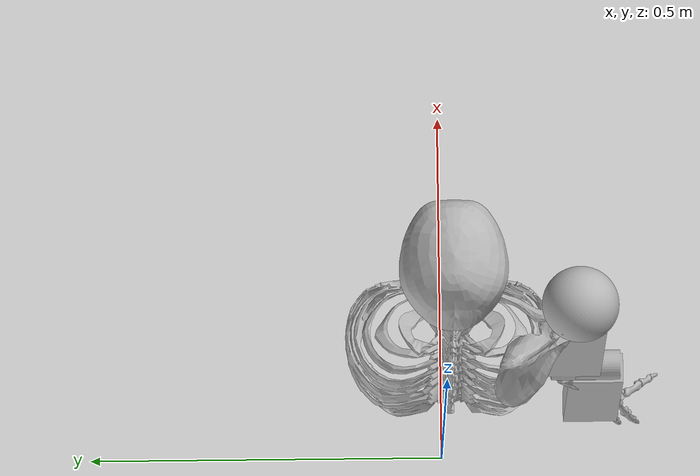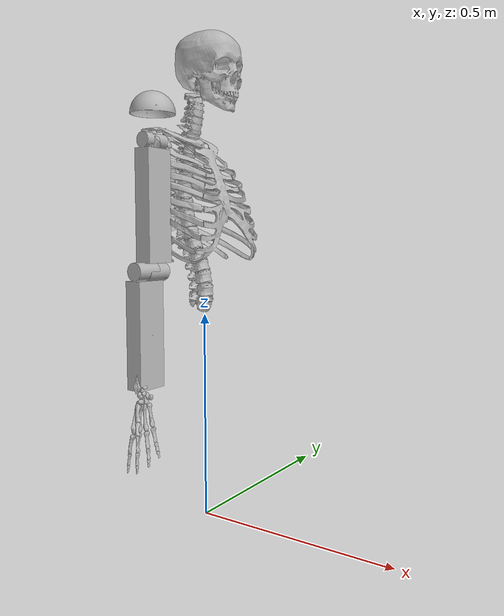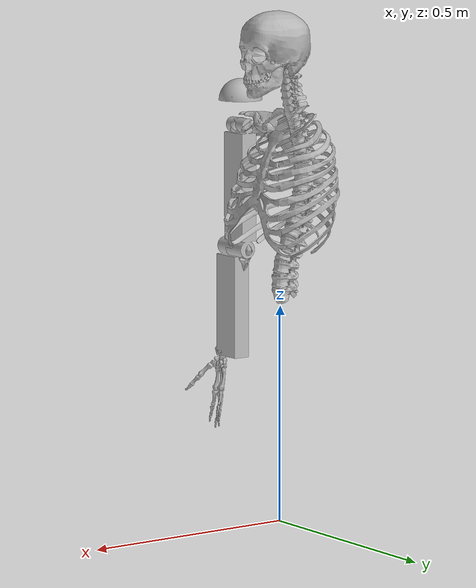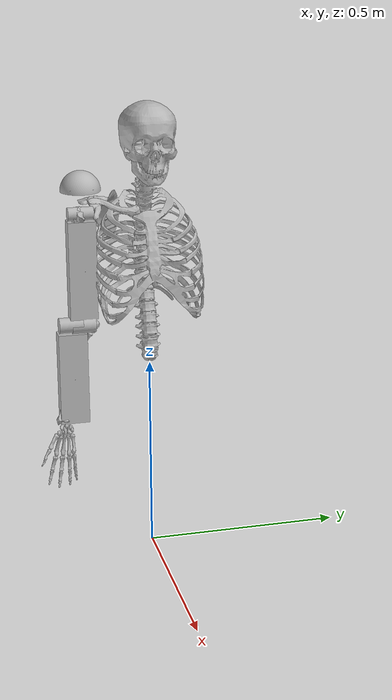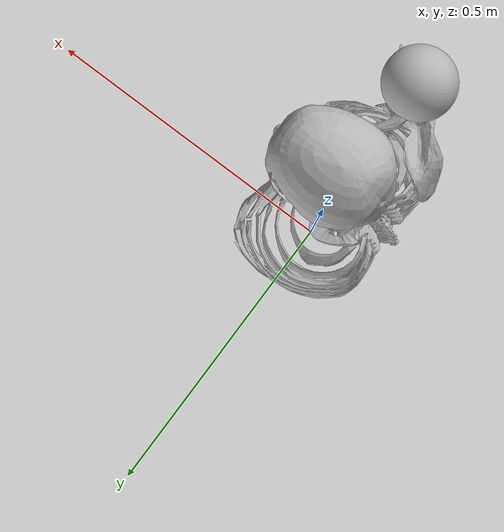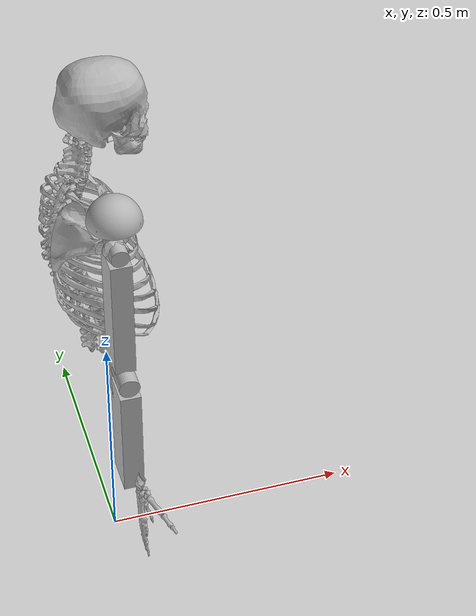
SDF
<?xml version='1.0'?>
<sdf version='1.6'>
  <model name='ExoWtihSkeletonNoJoints'>
    <model name='ExoSuitNoJoints'>
      <link name='upperArm'>
        <self_collide>0</self_collide>
        <pose frame=''>-0 -0.165701 0.853429 0 -0 0</pose>
        <inertial>
          <pose frame=''>0 0 0 0 -0 0</pose>
          <mass>0.035365</mass>
          <inertia>
            <ixx>0.0268487</ixx>
            <ixy>-1.31877e-10</ixy>
            <ixz>5.0011e-05</ixz>
            <iyy>0.0258777</iyy>
            <iyz>6.78369e-10</iyz>
            <izz>0.000996808</izz>
          </inertia>
        </inertial>
        <visual name='upperArm_visual'>
          <geometry>
            <mesh>
              <uri>model://ExoSuitNoJoints/meshes/CAD/upperArm.stl</uri>
              <scale>0.001 0.001 0.001</scale>
            </mesh>
          </geometry>
        </visual>
      </link>
      <link name='lowerArm'>
        <self_collide>0</self_collide>
        <pose frame=''>-1e-06 -0.196437 0.58865 0 -0 0</pose>
        <inertial>
          <pose frame=''>0 0 0 0 -0 0</pose>
          <mass>0.0390282</mass>
          <inertia>
            <ixx>0.0151468</ixx>
            <ixy>-4.3037e-09</ixy>
            <ixz>4.49526e-05</ixz>
            <iyy>0.013636</iyy>
            <iyz>1.19603e-08</iyz>
            <izz>0.0015572</izz>
          </inertia>
        </inertial>
        <visual name='lowerArm_visual'>
          <geometry>
            <mesh>
              <uri>model://ExoSuitNoJoints/meshes/CAD/lowerArm.stl</uri>
              <scale>0.001 0.001 0.001</scale>
            </mesh>
          </geometry>
        </visual>
      </link>
      <link name='shoulder'>
        <self_collide>0</self_collide>
        <pose frame=''>-1e-06 -0.163976 1.08128 0 -0 0</pose>
        <inertial>
          <pose frame=''>0 0 0 0 -0 0</pose>
          <mass>0.0163027</mass>
          <inertia>
            <ixx>0.0195156</ixx>
            <ixy>-1.99665e-09</ixy>
            <ixz>2.89054e-05</ixz>
            <iyy>0.0190772</iyy>
            <iyz>1.37222e-08</iyz>
            <izz>0.000464974</izz>
          </inertia>
        </inertial>
        <visual name='shoulder_visual'>
          <geometry>
            <mesh>
              <uri>model://ExoSuitNoJoints/meshes/CAD/shoulder.stl</uri>
              <scale>0.001 0.001 0.001</scale>
            </mesh>
          </geometry>
        </visual>
      </link>
      <joint name='offset' type='fixed'>
        <parent>world</parent>
        <child>shoulder</child>
      </joint>
      <plugin name='muscle_interface_plugin' filename='libgazebo_ros_muscle_interface.so'/>
      <muscles>model://ExoSuitNoJoints/muscles.osim</muscles>
      <pose frame=''>-0.007648 -0.001248 -0.100006 0 -0 0</pose>
    </model>
    <model name='arm26'>
      <muscles>model://arm26/muscles.osim</muscles>
      <link name='base'>
        <pose frame=''>0 0 0.8 1.5708 -0 0</pose>
        <inertial>
          <mass>0.0001</mass>
          <pose frame=''>0 0 0 0 -0 0</pose>
          <inertia>
            <ixx>0</ixx>
            <ixy>0</ixy>
            <ixz>0</ixz>
            <iyy>0</iyy>
            <iyz>0</iyz>
            <izz>0</izz>
          </inertia>
        </inertial>
        <visual name='ground_ribs'>
          <pose frame=''>-0 0 -0 0 -0 0</pose>
          <geometry>
            <mesh>
              <uri>model://arm26/meshes/visuals/ground_ribs.dae</uri>
              <scale>1 1 1</scale>
            </mesh>
          </geometry>
        </visual>
        <visual name='ground_spine'>
          <pose frame=''>-0 0 -0 0 -0 0</pose>
          <geometry>
            <mesh>
              <uri>model://arm26/meshes/visuals/ground_spine.dae</uri>
              <scale>1 1 1</scale>
            </mesh>
          </geometry>
        </visual>
        <visual name='ground_skull'>
          <pose frame=''>-0 0 -0 0 -0 0</pose>
          <geometry>
            <mesh>
              <uri>model://arm26/meshes/visuals/ground_skull.dae</uri>
              <scale>1 1 1</scale>
            </mesh>
          </geometry>
        </visual>
        <visual name='ground_jaw'>
          <pose frame=''>-0 0 -0 0 -0 0</pose>
          <geometry>
            <mesh>
              <uri>model://arm26/meshes/visuals/ground_jaw.dae</uri>
              <scale>1 1 1</scale>
            </mesh>
          </geometry>
        </visual>
        <visual name='ground_r_clavicle'>
          <pose frame=''>-0 0 -0 0 -0 0</pose>
          <geometry>
            <mesh>
              <uri>model://arm26/meshes/visuals/ground_r_clavicle.dae</uri>
              <scale>1 1 1</scale>
            </mesh>
          </geometry>
        </visual>
        <visual name='ground_r_scapula'>
          <pose frame=''>-0 0 -0 0 -0 0</pose>
          <geometry>
            <mesh>
              <uri>model://arm26/meshes/visuals/ground_r_scapula.dae</uri>
              <scale>1 1 1</scale>
            </mesh>
          </geometry>
        </visual>
        <self_collide>0</self_collide>
      </link>
      <link name='r_humerus'>
        <pose frame=''>-0.017545 -0.17 0.793 1.5708 -0 0</pose>
        <inertial>
          <mass>1.86457</mass>
          <pose frame=''>0 0 0 0 -0 0</pose>
          <inertia>
            <ixx>0.01481</ixx>
            <ixy>0</ixy>
            <ixz>0</ixz>
            <iyy>0.004551</iyy>
            <iyz>0</iyz>
            <izz>0.013193</izz>
          </inertia>
        </inertial>
        <visual name='arm_r_humerus'>
          <pose frame=''>-0 0 -0 0 -0 0</pose>
          <geometry>
            <mesh>
              <uri>model://arm26/meshes/visuals/arm_r_humerus.dae</uri>
              <scale>1 1 1</scale>
            </mesh>
          </geometry>
        </visual>
        <self_collide>0</self_collide>
      </link>
      <link name='r_ulna_radius_hand'>
        <pose frame=''>-0.011445 -0.1577 0.5026 1.5708 -0 0</pose>
        <inertial>
          <mass>1.53432</mass>
          <pose frame=''>0 0 0 0 -0 0</pose>
          <inertia>
            <ixx>0.019281</ixx>
            <ixy>0</ixy>
            <ixz>0</ixz>
            <iyy>0.001571</iyy>
            <iyz>0</iyz>
            <izz>0.020062</izz>
          </inertia>
        </inertial>
        <visual name='arm_r_ulna'>
          <pose frame=''>-0 0 -0 0 -0 0</pose>
          <geometry>
            <mesh>
              <uri>model://arm26/meshes/visuals/arm_r_ulna.dae</uri>
              <scale>1 1 1</scale>
            </mesh>
          </geometry>
        </visual>
        <visual name='arm_r_radius'>
          <pose frame=''>-0 0 -0 0 -0 0</pose>
          <geometry>
            <mesh>
              <uri>model://arm26/meshes/visuals/arm_r_radius.dae</uri>
              <scale>1 1 1</scale>
            </mesh>
          </geometry>
        </visual>
        <visual name='arm_r_lunate'>
          <pose frame=''>-0 0 -0 0 -0 0</pose>
          <geometry>
            <mesh>
              <uri>model://arm26/meshes/visuals/arm_r_lunate.dae</uri>
              <scale>1 1 1</scale>
            </mesh>
          </geometry>
        </visual>
        <visual name='arm_r_scaphoid'>
          <pose frame=''>-0 0 -0 0 -0 0</pose>
          <geometry>
            <mesh>
              <uri>model://arm26/meshes/visuals/arm_r_scaphoid.dae</uri>
              <scale>1 1 1</scale>
            </mesh>
          </geometry>
        </visual>
        <visual name='arm_r_pisiform'>
          <pose frame=''>-0 0 -0 0 -0 0</pose>
          <geometry>
            <mesh>
              <uri>model://arm26/meshes/visuals/arm_r_pisiform.dae</uri>
              <scale>1 1 1</scale>
            </mesh>
          </geometry>
        </visual>
        <visual name='arm_r_triquetrum'>
          <pose frame=''>-0 0 -0 0 -0 0</pose>
          <geometry>
            <mesh>
              <uri>model://arm26/meshes/visuals/arm_r_triquetrum.dae</uri>
              <scale>1 1 1</scale>
            </mesh>
          </geometry>
        </visual>
        <visual name='arm_r_capitate'>
          <pose frame=''>-0 0 -0 0 -0 0</pose>
          <geometry>
            <mesh>
              <uri>model://arm26/meshes/visuals/arm_r_capitate.dae</uri>
              <scale>1 1 1</scale>
            </mesh>
          </geometry>
        </visual>
        <visual name='arm_r_trapezium'>
          <pose frame=''>-0 0 -0 0 -0 0</pose>
          <geometry>
            <mesh>
              <uri>model://arm26/meshes/visuals/arm_r_trapezium.dae</uri>
              <scale>1 1 1</scale>
            </mesh>
          </geometry>
        </visual>
        <visual name='arm_r_trapezoid'>
          <pose frame=''>-0 0 -0 0 -0 0</pose>
          <geometry>
            <mesh>
              <uri>model://arm26/meshes/visuals/arm_r_trapezoid.dae</uri>
              <scale>1 1 1</scale>
            </mesh>
          </geometry>
        </visual>
        <visual name='arm_r_hamate'>
          <pose frame=''>-0 0 -0 0 -0 0</pose>
          <geometry>
            <mesh>
              <uri>model://arm26/meshes/visuals/arm_r_hamate.dae</uri>
              <scale>1 1 1</scale>
            </mesh>
          </geometry>
        </visual>
        <visual name='arm_r_1mc'>
          <pose frame=''>-0 0 -0 0 -0 0</pose>
          <geometry>
            <mesh>
              <uri>model://arm26/meshes/visuals/arm_r_1mc.dae</uri>
              <scale>1 1 1</scale>
            </mesh>
          </geometry>
        </visual>
        <visual name='arm_r_2mc'>
          <pose frame=''>-0 0 -0 0 -0 0</pose>
          <geometry>
            <mesh>
              <uri>model://arm26/meshes/visuals/arm_r_2mc.dae</uri>
              <scale>1 1 1</scale>
            </mesh>
          </geometry>
        </visual>
        <visual name='arm_r_3mc'>
          <pose frame=''>-0 0 -0 0 -0 0</pose>
          <geometry>
            <mesh>
              <uri>model://arm26/meshes/visuals/arm_r_3mc.dae</uri>
              <scale>1 1 1</scale>
            </mesh>
          </geometry>
        </visual>
        <visual name='arm_r_4mc'>
          <pose frame=''>-0 0 -0 0 -0 0</pose>
          <geometry>
            <mesh>
              <uri>model://arm26/meshes/visuals/arm_r_4mc.dae</uri>
              <scale>1 1 1</scale>
            </mesh>
          </geometry>
        </visual>
        <visual name='arm_r_5mc'>
          <pose frame=''>-0 0 -0 0 -0 0</pose>
          <geometry>
            <mesh>
              <uri>model://arm26/meshes/visuals/arm_r_5mc.dae</uri>
              <scale>1 1 1</scale>
            </mesh>
          </geometry>
        </visual>
        <visual name='arm_r_thumbprox'>
          <pose frame=''>-0 0 -0 0 -0 0</pose>
          <geometry>
            <mesh>
              <uri>model://arm26/meshes/visuals/arm_r_thumbprox.dae</uri>
              <scale>1 1 1</scale>
            </mesh>
          </geometry>
        </visual>
        <visual name='arm_r_thumbdist'>
          <pose frame=''>-0 0 -0 0 -0 0</pose>
          <geometry>
            <mesh>
              <uri>model://arm26/meshes/visuals/arm_r_thumbdist.dae</uri>
              <scale>1 1 1</scale>
            </mesh>
          </geometry>
        </visual>
        <visual name='arm_r_2proxph'>
          <pose frame=''>-0 0 -0 0 -0 0</pose>
          <geometry>
            <mesh>
              <uri>model://arm26/meshes/visuals/arm_r_2proxph.dae</uri>
              <scale>1 1 1</scale>
            </mesh>
          </geometry>
        </visual>
        <visual name='arm_r_2midph'>
          <pose frame=''>-0 0 -0 0 -0 0</pose>
          <geometry>
            <mesh>
              <uri>model://arm26/meshes/visuals/arm_r_2midph.dae</uri>
              <scale>1 1 1</scale>
            </mesh>
          </geometry>
        </visual>
        <visual name='arm_r_2distph'>
          <pose frame=''>-0 0 -0 0 -0 0</pose>
          <geometry>
            <mesh>
              <uri>model://arm26/meshes/visuals/arm_r_2distph.dae</uri>
              <scale>1 1 1</scale>
            </mesh>
          </geometry>
        </visual>
        <visual name='arm_r_3proxph'>
          <pose frame=''>-0 0 -0 0 -0 0</pose>
          <geometry>
            <mesh>
              <uri>model://arm26/meshes/visuals/arm_r_3proxph.dae</uri>
              <scale>1 1 1</scale>
            </mesh>
          </geometry>
        </visual>
        <visual name='arm_r_3midph'>
          <pose frame=''>-0 0 -0 0 -0 0</pose>
          <geometry>
            <mesh>
              <uri>model://arm26/meshes/visuals/arm_r_3midph.dae</uri>
              <scale>1 1 1</scale>
            </mesh>
          </geometry>
        </visual>
        <visual name='arm_r_3distph'>
          <pose frame=''>-0 0 -0 0 -0 0</pose>
          <geometry>
            <mesh>
              <uri>model://arm26/meshes/visuals/arm_r_3distph.dae</uri>
              <scale>1 1 1</scale>
            </mesh>
          </geometry>
        </visual>
        <visual name='arm_r_4proxph'>
          <pose frame=''>-0 0 -0 0 -0 0</pose>
          <geometry>
            <mesh>
              <uri>model://arm26/meshes/visuals/arm_r_4proxph.dae</uri>
              <scale>1 1 1</scale>
            </mesh>
          </geometry>
        </visual>
        <visual name='arm_r_4midph'>
          <pose frame=''>-0 0 -0 0 -0 0</pose>
          <geometry>
            <mesh>
              <uri>model://arm26/meshes/visuals/arm_r_4midph.dae</uri>
              <scale>1 1 1</scale>
            </mesh>
          </geometry>
        </visual>
        <visual name='arm_r_4distph'>
          <pose frame=''>-0 0 -0 0 -0 0</pose>
          <geometry>
            <mesh>
              <uri>model://arm26/meshes/visuals/arm_r_4distph.dae</uri>
              <scale>1 1 1</scale>
            </mesh>
          </geometry>
        </visual>
        <visual name='arm_r_5proxph'>
          <pose frame=''>-0 0 -0 0 -0 0</pose>
          <geometry>
            <mesh>
              <uri>model://arm26/meshes/visuals/arm_r_5proxph.dae</uri>
              <scale>1 1 1</scale>
            </mesh>
          </geometry>
        </visual>
        <visual name='arm_r_5midph'>
          <pose frame=''>-0 0 -0 0 -0 0</pose>
          <geometry>
            <mesh>
              <uri>model://arm26/meshes/visuals/arm_r_5midph.dae</uri>
              <scale>1 1 1</scale>
            </mesh>
          </geometry>
        </visual>
        <visual name='arm_r_5distph'>
          <pose frame=''>-0 0 -0 0 -0 0</pose>
          <geometry>
            <mesh>
              <uri>model://arm26/meshes/visuals/arm_r_5distph.dae</uri>
              <scale>1 1 1</scale>
            </mesh>
          </geometry>
        </visual>
        <self_collide>0</self_collide>
      </link>
      <joint name='offset' type='fixed'>
        <parent>world</parent>
        <child>base</child>
      </joint>
      <joint name='r_shoulder' type='revolute'>
        <parent>base</parent>
        <child>r_humerus</child>
        <axis>
          <xyz>0 0 1</xyz>
          <dynamics>
            <damping>1e-06</damping>
            <spring_reference>0</spring_reference>
            <spring_stiffness>0</spring_stiffness>
          </dynamics>
          <limit>
            <lower>-1.5708</lower>
            <upper>3.14159</upper>
            <stiffness>100</stiffness>
            <dissipation>0.01</dissipation>
          </limit>
          <use_parent_model_frame>0</use_parent_model_frame>
        </axis>
      </joint>
      <joint name='r_elbow' type='revolute'>
        <parent>r_humerus</parent>
        <child>r_ulna_radius_hand</child>
        <axis>
          <xyz>0 0 1</xyz>
          <dynamics>
            <damping>1e-06</damping>
            <spring_reference>0</spring_reference>
            <spring_stiffness>0</spring_stiffness>
          </dynamics>
          <limit>
            <lower>0</lower>
            <upper>2.26893</upper>
            <stiffness>100</stiffness>
            <dissipation>0.01</dissipation>
          </limit>
          <use_parent_model_frame>0</use_parent_model_frame>
        </axis>
      </joint>
      <plugin name='muscle_interface_plugin' filename='libgazebo_ros_muscle_interface.so'/>
      <pose frame=''>0.007648 0.001248 0.100007 0 -0 0</pose>
    </model>
    <joint name='base_JOINT_3' type='fixed'>
      <parent>arm26::base</parent>
      <child>ExoSuitNoJoints::shoulder</child>
      <pose frame=''>0 0 0 0 -0 0</pose>
      <physics>
        <ode>
          <limit>
            <cfm>0</cfm>
            <erp>0.2</erp>
          </limit>
          <suspension>
            <cfm>0</cfm>
            <erp>0.2</erp>
          </suspension>
        </ode>
      </physics>
    </joint>
    <joint name='r_humerus_JOINT_4' type='fixed'>
      <parent>arm26::r_humerus</parent>
      <child>ExoSuitNoJoints::upperArm</child>
      <pose frame=''>0 0 0 0 -0 0</pose>
      <physics>
        <ode>
          <limit>
            <cfm>0</cfm>
            <erp>0.2</erp>
          </limit>
          <suspension>
            <cfm>0</cfm>
            <erp>0.2</erp>
          </suspension>
        </ode>
      </physics>
    </joint>
    <joint name='r_ulna_radius_hand_JOINT_5' type='fixed'>
      <parent>arm26::r_ulna_radius_hand</parent>
      <child>ExoSuitNoJoints::lowerArm</child>
      <pose frame=''>0 0 0 0 -0 0</pose>
      <physics>
        <ode>
          <limit>
            <cfm>0</cfm>
            <erp>0.2</erp>
          </limit>
          <suspension>
            <cfm>0</cfm>
            <erp>0.2</erp>
          </suspension>
        </ode>
      </physics>
    </joint>
    <static>0</static>
    <allow_auto_disable>1</allow_auto_disable>
  </model>
</sdf>
